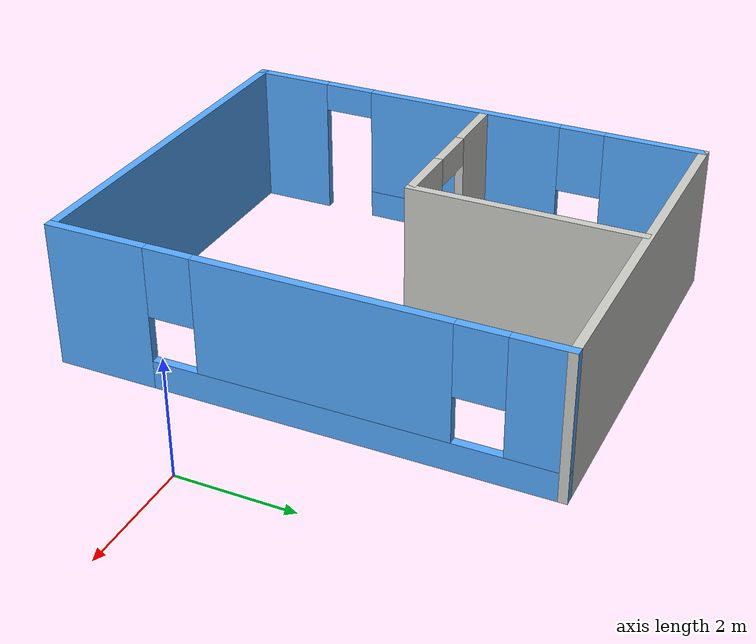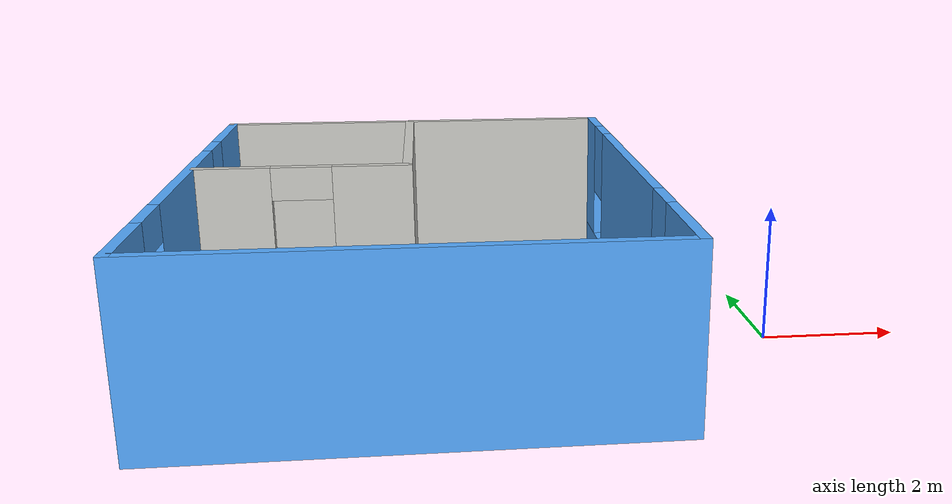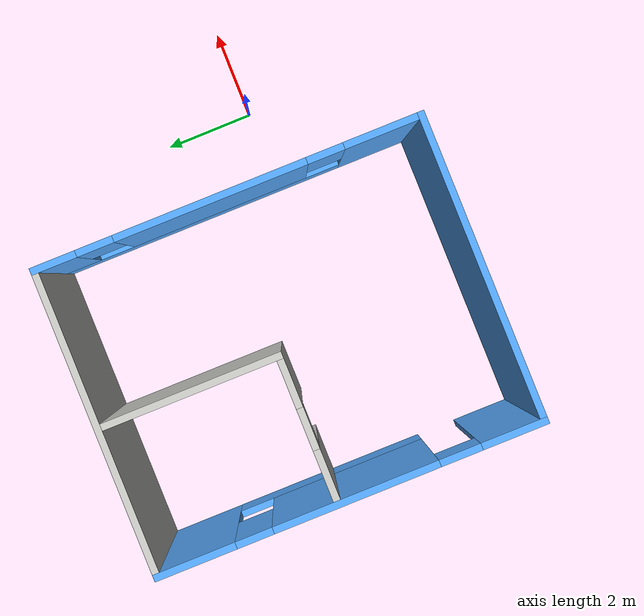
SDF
<?xml version='1.0'?>
<sdf version='1.6'>
  <model name='mybuilding'>
    <pose frame=''>-5.122 1.06321 0 0 -0 0</pose>
    <link name='Wall_0'>
      <pose frame=''>-3.3 0 0 0 0 -1.5708</pose>
      <visual name='Wall_0_Visual_0'>
        <pose frame=''>-3.36179 0 1.25 0 -0 0</pose>
        <geometry>
          <box>
            <size>1.77642 0.15 2.5</size>
          </box>
        </geometry>
        <material>
          <script>
            <uri>file://media/materials/scripts/gazebo.material</uri>
            <name>Gazebo/Grey</name>
          </script>
          <ambient>0.333333 0.666667 1 1</ambient>
        </material>
        <meta>
          <layer>0</layer>
        </meta>
      </visual>
      <collision name='Wall_0_Collision_0'>
        <geometry>
          <box>
            <size>1.77642 0.15 2.5</size>
          </box>
        </geometry>
        <pose frame=''>-3.36179 0 1.25 0 -0 0</pose>
      </collision>
      <visual name='Wall_0_Visual_1'>
        <pose frame=''>3.53432 0 1.25 0 -0 0</pose>
        <geometry>
          <box>
            <size>1.43135 0.15 2.5</size>
          </box>
        </geometry>
        <material>
          <script>
            <uri>file://media/materials/scripts/gazebo.material</uri>
            <name>Gazebo/Grey</name>
          </script>
          <ambient>0.333333 0.666667 1 1</ambient>
        </material>
        <meta>
          <layer>0</layer>
        </meta>
      </visual>
      <collision name='Wall_0_Collision_1'>
        <geometry>
          <box>
            <size>1.43135 0.15 2.5</size>
          </box>
        </geometry>
        <pose frame=''>3.53432 0 1.25 0 -0 0</pose>
      </collision>
      <visual name='Wall_0_Visual_2'>
        <pose frame=''>-0.277468 0 0.25 0 -0 0</pose>
        <geometry>
          <box>
            <size>4.39223 0.15 0.5</size>
          </box>
        </geometry>
        <material>
          <script>
            <uri>file://media/materials/scripts/gazebo.material</uri>
            <name>Gazebo/Grey</name>
          </script>
          <ambient>0.333333 0.666667 1 1</ambient>
        </material>
        <meta>
          <layer>0</layer>
        </meta>
      </visual>
      <collision name='Wall_0_Collision_2'>
        <geometry>
          <box>
            <size>4.39223 0.15 0.5</size>
          </box>
        </geometry>
        <pose frame=''>-0.277468 0 0.25 0 -0 0</pose>
      </collision>
      <visual name='Wall_0_Visual_3'>
        <pose frame=''>0.122532 0 1.5 0 -0 0</pose>
        <geometry>
          <box>
            <size>3.59223 0.15 2</size>
          </box>
        </geometry>
        <material>
          <script>
            <uri>file://media/materials/scripts/gazebo.material</uri>
            <name>Gazebo/Grey</name>
          </script>
          <ambient>0.333333 0.666667 1 1</ambient>
        </material>
        <meta>
          <layer>0</layer>
        </meta>
      </visual>
      <collision name='Wall_0_Collision_3'>
        <geometry>
          <box>
            <size>3.59223 0.15 2</size>
          </box>
        </geometry>
        <pose frame=''>0.122532 0 1.5 0 -0 0</pose>
      </collision>
      <visual name='Wall_0_Visual_4'>
        <pose frame=''>-2.07358 0 1.9 0 -0 0</pose>
        <geometry>
          <box>
            <size>0.8 0.15 1.2</size>
          </box>
        </geometry>
        <material>
          <script>
            <uri>file://media/materials/scripts/gazebo.material</uri>
            <name>Gazebo/Grey</name>
          </script>
          <ambient>0.333333 0.666667 1 1</ambient>
        </material>
        <meta>
          <layer>0</layer>
        </meta>
      </visual>
      <collision name='Wall_0_Collision_4'>
        <geometry>
          <box>
            <size>0.8 0.15 1.2</size>
          </box>
        </geometry>
        <pose frame=''>-2.07358 0 1.9 0 -0 0</pose>
      </collision>
      <visual name='Wall_0_Visual_5'>
        <pose frame=''>2.36865 0 2.25 0 -0 0</pose>
        <geometry>
          <box>
            <size>0.9 0.15 0.5</size>
          </box>
        </geometry>
        <material>
          <script>
            <uri>file://media/materials/scripts/gazebo.material</uri>
            <name>Gazebo/Grey</name>
          </script>
          <ambient>0.333333 0.666667 1 1</ambient>
        </material>
        <meta>
          <layer>0</layer>
        </meta>
      </visual>
      <collision name='Wall_0_Collision_5'>
        <geometry>
          <box>
            <size>0.9 0.15 0.5</size>
          </box>
        </geometry>
        <pose frame=''>2.36865 0 2.25 0 -0 0</pose>
      </collision>
    </link>
    <link name='Wall_1'>
      <collision name='Wall_1_Collision'>
        <geometry>
          <box>
            <size>6.75 0.15 2.5</size>
          </box>
        </geometry>
        <pose frame=''>0 0 1.25 0 -0 0</pose>
      </collision>
      <visual name='Wall_1_Visual'>
        <pose frame=''>0 0 1.25 0 -0 0</pose>
        <geometry>
          <box>
            <size>6.75 0.15 2.5</size>
          </box>
        </geometry>
        <material>
          <script>
            <uri>file://media/materials/scripts/gazebo.material</uri>
            <name>Gazebo/Grey</name>
          </script>
          <ambient>0.333333 0.666667 1 1</ambient>
        </material>
        <meta>
          <layer>0</layer>
        </meta>
      </visual>
      <pose frame=''>0 -4.175 0 0 -0 0</pose>
    </link>
    <link name='Wall_2'>
      <pose frame=''>3.3 0 0 0 -0 1.5708</pose>
      <visual name='Wall_2_Visual_0'>
        <pose frame=''>-3.37632 0 1.25 0 -0 0</pose>
        <geometry>
          <box>
            <size>1.74735 0.15 2.5</size>
          </box>
        </geometry>
        <material>
          <script>
            <uri>file://media/materials/scripts/gazebo.material</uri>
            <name>Gazebo/Grey</name>
          </script>
          <ambient>0.333333 0.666667 1 1</ambient>
        </material>
        <meta>
          <layer>0</layer>
        </meta>
      </visual>
      <collision name='Wall_2_Collision_0'>
        <geometry>
          <box>
            <size>1.74735 0.15 2.5</size>
          </box>
        </geometry>
        <pose frame=''>-3.37632 0 1.25 0 -0 0</pose>
      </collision>
      <visual name='Wall_2_Visual_1'>
        <pose frame=''>0.873677 0 0.25 0 -0 0</pose>
        <geometry>
          <box>
            <size>6.75265 0.15 0.5</size>
          </box>
        </geometry>
        <material>
          <script>
            <uri>file://media/materials/scripts/gazebo.material</uri>
            <name>Gazebo/Grey</name>
          </script>
          <ambient>0.333333 0.666667 1 1</ambient>
        </material>
        <meta>
          <layer>0</layer>
        </meta>
      </visual>
      <collision name='Wall_2_Collision_1'>
        <geometry>
          <box>
            <size>6.75265 0.15 0.5</size>
          </box>
        </geometry>
        <pose frame=''>0.873677 0 0.25 0 -0 0</pose>
      </collision>
      <visual name='Wall_2_Visual_2'>
        <pose frame=''>0.384472 0 1.5 0 -0 0</pose>
        <geometry>
          <box>
            <size>4.17424 0.15 2</size>
          </box>
        </geometry>
        <material>
          <script>
            <uri>file://media/materials/scripts/gazebo.material</uri>
            <name>Gazebo/Grey</name>
          </script>
          <ambient>0.333333 0.666667 1 1</ambient>
        </material>
        <meta>
          <layer>0</layer>
        </meta>
      </visual>
      <collision name='Wall_2_Collision_2'>
        <geometry>
          <box>
            <size>4.17424 0.15 2</size>
          </box>
        </geometry>
        <pose frame=''>0.384472 0 1.5 0 -0 0</pose>
      </collision>
      <visual name='Wall_2_Visual_3'>
        <pose frame=''>3.76079 0 1.5 0 -0 0</pose>
        <geometry>
          <box>
            <size>0.97841 0.15 2</size>
          </box>
        </geometry>
        <material>
          <script>
            <uri>file://media/materials/scripts/gazebo.material</uri>
            <name>Gazebo/Grey</name>
          </script>
          <ambient>0.333333 0.666667 1 1</ambient>
        </material>
        <meta>
          <layer>0</layer>
        </meta>
      </visual>
      <collision name='Wall_2_Collision_3'>
        <geometry>
          <box>
            <size>0.97841 0.15 2</size>
          </box>
        </geometry>
        <pose frame=''>3.76079 0 1.5 0 -0 0</pose>
      </collision>
      <visual name='Wall_2_Visual_4'>
        <pose frame=''>-2.10265 0 1.9 0 -0 0</pose>
        <geometry>
          <box>
            <size>0.8 0.15 1.2</size>
          </box>
        </geometry>
        <material>
          <script>
            <uri>file://media/materials/scripts/gazebo.material</uri>
            <name>Gazebo/Grey</name>
          </script>
          <ambient>0.333333 0.666667 1 1</ambient>
        </material>
        <meta>
          <layer>0</layer>
        </meta>
      </visual>
      <collision name='Wall_2_Collision_4'>
        <geometry>
          <box>
            <size>0.8 0.15 1.2</size>
          </box>
        </geometry>
        <pose frame=''>-2.10265 0 1.9 0 -0 0</pose>
      </collision>
      <visual name='Wall_2_Visual_5'>
        <pose frame=''>2.87159 0 1.9 0 -0 0</pose>
        <geometry>
          <box>
            <size>0.8 0.15 1.2</size>
          </box>
        </geometry>
        <material>
          <script>
            <uri>file://media/materials/scripts/gazebo.material</uri>
            <name>Gazebo/Grey</name>
          </script>
          <ambient>0.333333 0.666667 1 1</ambient>
        </material>
        <meta>
          <layer>0</layer>
        </meta>
      </visual>
      <collision name='Wall_2_Collision_5'>
        <geometry>
          <box>
            <size>0.8 0.15 1.2</size>
          </box>
        </geometry>
        <pose frame=''>2.87159 0 1.9 0 -0 0</pose>
      </collision>
    </link>
    <link name='Wall_3'>
      <collision name='Wall_3_Collision'>
        <geometry>
          <box>
            <size>6.75 0.15 2.5</size>
          </box>
        </geometry>
        <pose frame=''>0 0 1.25 0 -0 0</pose>
      </collision>
      <visual name='Wall_3_Visual'>
        <pose frame=''>0 0 1.25 0 -0 0</pose>
        <geometry>
          <box>
            <size>6.75 0.15 2.5</size>
          </box>
        </geometry>
        <material>
          <script>
            <uri>file://media/materials/scripts/gazebo.material</uri>
            <name>Gazebo/CeilingTiled</name>
          </script>
          <ambient>0.333333 0.666667 1 1</ambient>
        </material>
        <meta>
          <layer>0</layer>
        </meta>
      </visual>
      <pose frame=''>0 4.175 0 0 -0 3.14159</pose>
    </link>
    <link name='Wall_5'>
      <collision name='Wall_5_Collision'>
        <geometry>
          <box>
            <size>4 0.15 2.5</size>
          </box>
        </geometry>
        <pose frame=''>0 0 1.25 0 -0 0</pose>
      </collision>
      <visual name='Wall_5_Visual'>
        <pose frame=''>0 0 1.25 0 -0 0</pose>
        <geometry>
          <box>
            <size>4 0.15 2.5</size>
          </box>
        </geometry>
        <material>
          <script>
            <uri>file://media/materials/scripts/gazebo.material</uri>
            <name>Gazebo/CeilingTiled</name>
          </script>
          <ambient>0.333333 0.666667 1 1</ambient>
        </material>
        <meta>
          <layer>0</layer>
        </meta>
      </visual>
      <pose frame=''>-0.107976 2.1968 0 0 0 -1.5708</pose>
    </link>
    <link name='Wall_6'>
      <pose frame=''>-1.65798 0.271799 0 0 -0 3.14159</pose>
      <visual name='Wall_6_Visual_0'>
        <pose frame=''>-1.02779 0 1.25 0 -0 0</pose>
        <geometry>
          <box>
            <size>1.19441 0.15 2.5</size>
          </box>
        </geometry>
        <material>
          <script>
            <uri>file://media/materials/scripts/gazebo.material</uri>
            <name>Gazebo/CeilingTiled</name>
          </script>
          <ambient>0.333333 0.666667 1 1</ambient>
        </material>
        <meta>
          <layer>0</layer>
        </meta>
      </visual>
      <collision name='Wall_6_Collision_0'>
        <geometry>
          <box>
            <size>1.19441 0.15 2.5</size>
          </box>
        </geometry>
        <pose frame=''>-1.02779 0 1.25 0 -0 0</pose>
      </collision>
      <visual name='Wall_6_Visual_1'>
        <pose frame=''>1.04721 0 1.25 0 -0 0</pose>
        <geometry>
          <box>
            <size>1.15559 0.15 2.5</size>
          </box>
        </geometry>
        <material>
          <script>
            <uri>file://media/materials/scripts/gazebo.material</uri>
            <name>Gazebo/CeilingTiled</name>
          </script>
          <ambient>0.333333 0.666667 1 1</ambient>
        </material>
        <meta>
          <layer>0</layer>
        </meta>
      </visual>
      <collision name='Wall_6_Collision_1'>
        <geometry>
          <box>
            <size>1.15559 0.15 2.5</size>
          </box>
        </geometry>
        <pose frame=''>1.04721 0 1.25 0 -0 0</pose>
      </collision>
      <visual name='Wall_6_Visual_2'>
        <pose frame=''>0.019412 0 2.25 0 -0 0</pose>
        <geometry>
          <box>
            <size>0.9 0.15 0.5</size>
          </box>
        </geometry>
        <material>
          <script>
            <uri>file://media/materials/scripts/gazebo.material</uri>
            <name>Gazebo/CeilingTiled</name>
          </script>
          <ambient>0.333333 0.666667 1 1</ambient>
        </material>
        <meta>
          <layer>0</layer>
        </meta>
      </visual>
      <collision name='Wall_6_Collision_2'>
        <geometry>
          <box>
            <size>0.9 0.15 0.5</size>
          </box>
        </geometry>
        <pose frame=''>0.019412 0 2.25 0 -0 0</pose>
      </collision>
    </link>
    <static>1</static>
  </model>
</sdf>
